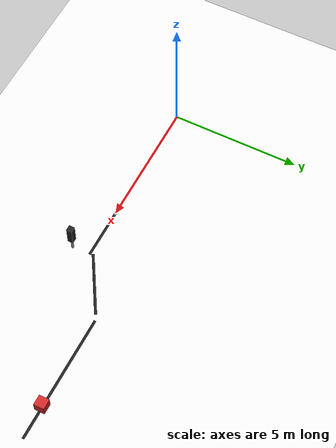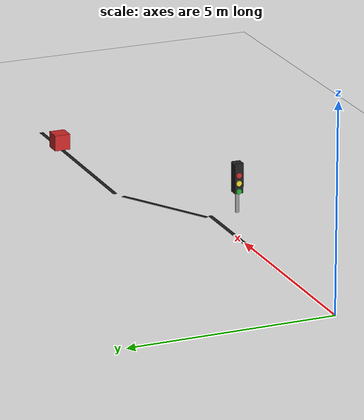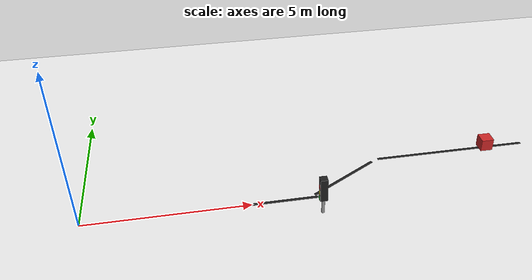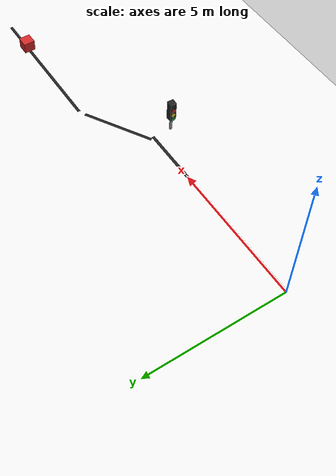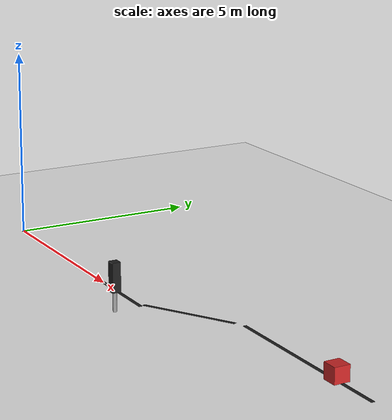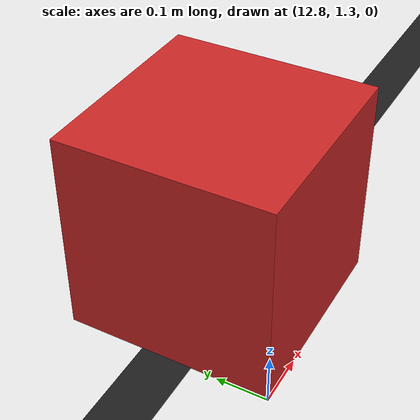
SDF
<sdf version="1.6">
 <world name="bright_outdoor">
  <light type="directional" name="sun">
   <pose>0 0 10 0 0 0</pose>
   <diffuse>0.95 0.95 0.90 1</diffuse>
   <specular>0.3 0.3 0.3 1</specular>
   <attenuation>
    <range>1000</range>
    <constant>0.9</constant>
    <linear>0.01</linear>
    <quadratic>0.001</quadratic>
   </attenuation>
   <direction>-0.3 0.2 -0.9</direction>
  </light>
  <model name="ground_plane">
   <static>true</static>
   <link name="link">
    <collision name="collision">
     <geometry><plane><normal>0 0 1</normal><size>100 100</size></plane></geometry>
     <surface><friction><ode><mu>100</mu><mu2>50</mu2></ode></friction></surface>
    </collision>
    <visual name="visual">
     <cast_shadows>false</cast_shadows>
     <geometry><plane><normal>0 0 1</normal><size>100 100</size></plane></geometry>
     <material>
      <script><uri>file://media/materials/scripts/gazebo.material</uri><name>Gazebo/White</name></script>
     </material>
    </visual>
   </link>
  </model>
  <model name="lane_segment_1">
   <static>true</static>
   <link name="link">
    <visual name="visual">
     <geometry><box><size>7.0 0.1 0.001</size></box></geometry>
     <material>
      <script><uri>file://media/materials/scripts/gazebo.material</uri><name>Gazebo/Black</name></script>
     </material>
    </visual>
   </link>
   <pose>3.5 0.0 0.0005 0 0 0</pose>
  </model>
  <model name="lane_segment_2">
   <static>true</static>
   <link name="link">
    <visual name="visual">
     <geometry><box><size>2.5 0.1 0.001</size></box></geometry>
     <material>
      <script><uri>file://media/materials/scripts/gazebo.material</uri><name>Gazebo/Black</name></script>
     </material>
    </visual>
   </link>
   <pose>8.0 0.75 0.0005 0 0 0.5404</pose>
  </model>
  <model name="lane_segment_3">
   <static>true</static>
   <link name="link">
    <visual name="visual">
     <geometry><box><size>5.0 0.1 0.001</size></box></geometry>
     <material>
      <script><uri>file://media/materials/scripts/gazebo.material</uri><name>Gazebo/Black</name></script>
     </material>
    </visual>
   </link>
   <pose>11.8 1.5 0.0005 0 0 0</pose>
  </model>
  <model name="traffic_light">
   <static>true</static>
   <link name="pole">
    <collision name="collision">
     <geometry><cylinder><radius>0.05</radius><length>0.5</length></cylinder></geometry>
    </collision>
    <visual name="visual">
     <geometry><cylinder><radius>0.05</radius><length>0.5</length></cylinder></geometry>
     <material>
      <script><uri>file://media/materials/scripts/gazebo.material</uri><name>Gazebo/Grey</name></script>
     </material>
    </visual>
    <pose>0 0 0.25 0 0 0</pose>
   </link>
   <link name="head">
    <collision name="collision"><geometry><box><size>0.22 0.22 0.75</size></box></geometry></collision>
    <visual name="visual">
     <geometry><box><size>0.22 0.22 0.75</size></box></geometry>
     <material>
      <script><uri>file://media/materials/scripts/gazebo.material</uri><name>Gazebo/Black</name></script>
     </material>
    </visual>
    <pose>0 0 0.875 0 0 0</pose>
   </link>
   <link name="red_light">
    <visual name="visual">
     <geometry><cylinder><radius>0.07</radius><length>0.02</length></cylinder></geometry>
     <material>
      <script><uri>file://media/materials/scripts/gazebo.material</uri><name>Gazebo/Red</name></script>
     </material>
    </visual>
    <pose>0 0.111 0.95 1.5708 0 0</pose>
   </link>
   <link name="yellow_light">
    <visual name="visual">
     <geometry><cylinder><radius>0.07</radius><length>0.02</length></cylinder></geometry>
     <material>
      <script><uri>file://media/materials/scripts/gazebo.material</uri><name>Gazebo/Yellow</name></script>
     </material>
    </visual>
    <pose>0 0.111 0.75 1.5708 0 0</pose>
   </link>
   <link name="green_light">
    <visual name="visual">
     <geometry><cylinder><radius>0.07</radius><length>0.02</length></cylinder></geometry>
     <material>
      <script><uri>file://media/materials/scripts/gazebo.material</uri><name>Gazebo/Green</name></script>
     </material>
    </visual>
    <pose>0 0.111 0.55 1.5708 0 0</pose>
   </link>
   <pose>7.0 -0.7 0.0 0 0 1.5708</pose>
  </model>
  <model name="obstacle_box">
   <static>true</static>
   <link name="link">
    <collision name="collision"><geometry><box><size>0.4 0.4 0.4</size></box></geometry></collision>
    <visual name="visual">
     <geometry><box><size>0.4 0.4 0.4</size></box></geometry>
     <material>
      <script><uri>file://media/materials/scripts/gazebo.material</uri><name>Gazebo/Red</name></script>
     </material>
    </visual>
   </link>
   <pose>13.0 1.5 0.2 0 0 0</pose>
  </model>
 </world>
</sdf>
